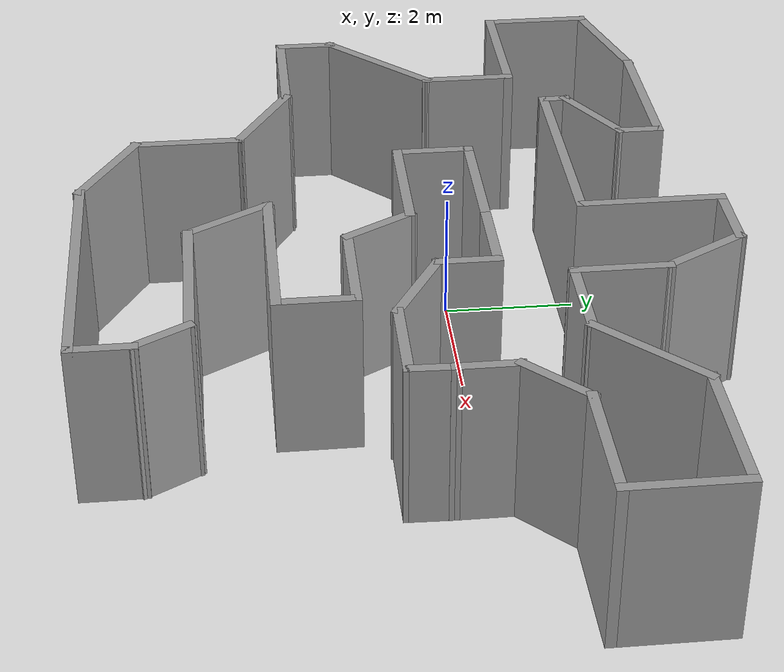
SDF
<?xml version='1.0'?>
<sdf version='1.7'>
  <model name='my_own_map_v2'>
    <pose>1.1907 -0.788514 0 0 -0 0</pose>
    <link name='Wall_10'>
      <collision name='Wall_10_Collision'>
        <geometry>
          <box>
            <size>1.75 0.15 2.5</size>
          </box>
        </geometry>
        <pose>0 0 1.25 0 -0 0</pose>
      </collision>
      <visual name='Wall_10_Visual'>
        <pose>0 0 1.25 0 -0 0</pose>
        <geometry>
          <box>
            <size>1.75 0.15 2.5</size>
          </box>
        </geometry>
        <material>
          <script>
            <uri>file://media/materials/scripts/gazebo.material</uri>
            <name>Gazebo/Grey</name>
          </script>
          <ambient>1 1 1 1</ambient>
        </material>
        <meta>
          <layer>0</layer>
        </meta>
      </visual>
      <pose>1.2693 -0.864114 0 0 -0 0</pose>
    </link>
    <link name='Wall_12'>
      <collision name='Wall_12_Collision'>
        <geometry>
          <box>
            <size>1.25 0.15 2.5</size>
          </box>
        </geometry>
        <pose>0 0 1.25 0 -0 0</pose>
      </collision>
      <visual name='Wall_12_Visual'>
        <pose>0 0 1.25 0 -0 0</pose>
        <geometry>
          <box>
            <size>1.25 0.15 2.5</size>
          </box>
        </geometry>
        <material>
          <script>
            <uri>file://media/materials/scripts/gazebo.material</uri>
            <name>Gazebo/Grey</name>
          </script>
          <ambient>1 1 1 1</ambient>
        </material>
        <meta>
          <layer>0</layer>
        </meta>
      </visual>
      <pose>2.0693 -1.41411 0 0 -0 -1.5708</pose>
    </link>
    <link name='Wall_13'>
      <collision name='Wall_13_Collision'>
        <geometry>
          <box>
            <size>2.75 0.15 2.5</size>
          </box>
        </geometry>
        <pose>0 0 1.25 0 -0 0</pose>
      </collision>
      <visual name='Wall_13_Visual'>
        <pose>0 0 1.25 0 -0 0</pose>
        <geometry>
          <box>
            <size>2.75 0.15 2.5</size>
          </box>
        </geometry>
        <material>
          <script>
            <uri>file://media/materials/scripts/gazebo.material</uri>
            <name>Gazebo/Grey</name>
          </script>
          <ambient>1 1 1 1</ambient>
        </material>
        <meta>
          <layer>0</layer>
        </meta>
      </visual>
      <pose>0.769297 -1.96411 0 0 -0 3.14159</pose>
    </link>
    <link name='Wall_14'>
      <collision name='Wall_14_Collision'>
        <geometry>
          <box>
            <size>1.5 0.15 2.5</size>
          </box>
        </geometry>
        <pose>0 0 1.25 0 -0 0</pose>
      </collision>
      <visual name='Wall_14_Visual'>
        <pose>0 0 1.25 0 -0 0</pose>
        <geometry>
          <box>
            <size>1.5 0.15 2.5</size>
          </box>
        </geometry>
        <material>
          <script>
            <uri>file://media/materials/scripts/gazebo.material</uri>
            <name>Gazebo/Grey</name>
          </script>
          <ambient>1 1 1 1</ambient>
        </material>
        <meta>
          <layer>0</layer>
        </meta>
      </visual>
      <pose>-0.193203 -2.54868 0 0 -0 -1.0472</pose>
    </link>
    <link name='Wall_15'>
      <collision name='Wall_15_Collision'>
        <geometry>
          <box>
            <size>2.5 0.15 2.5</size>
          </box>
        </geometry>
        <pose>0 0 1.25 0 -0 0</pose>
      </collision>
      <visual name='Wall_15_Visual'>
        <pose>0 0 1.25 0 -0 0</pose>
        <geometry>
          <box>
            <size>2.5 0.15 2.5</size>
          </box>
        </geometry>
        <material>
          <script>
            <uri>file://media/materials/scripts/gazebo.material</uri>
            <name>Gazebo/Grey</name>
          </script>
          <ambient>1 1 1 1</ambient>
        </material>
        <meta>
          <layer>0</layer>
        </meta>
      </visual>
      <pose>1.3193 -3.13325 0 0 -0 0</pose>
    </link>
    <link name='Wall_17'>
      <collision name='Wall_17_Collision'>
        <geometry>
          <box>
            <size>1 0.15 2.5</size>
          </box>
        </geometry>
        <pose>0 0 1.25 0 -0 0</pose>
      </collision>
      <visual name='Wall_17_Visual'>
        <pose>0 0 1.25 0 -0 0</pose>
        <geometry>
          <box>
            <size>1 0.15 2.5</size>
          </box>
        </geometry>
        <material>
          <script>
            <uri>file://media/materials/scripts/gazebo.material</uri>
            <name>Gazebo/Grey</name>
          </script>
          <ambient>1 1 1 1</ambient>
        </material>
        <meta>
          <layer>0</layer>
        </meta>
      </visual>
      <pose>2.7068 -3.50131 0 0 -0 -1.0472</pose>
    </link>
    <link name='Wall_18'>
      <collision name='Wall_18_Collision'>
        <geometry>
          <box>
            <size>1 0.15 2.5</size>
          </box>
        </geometry>
        <pose>0 0 1.25 0 -0 0</pose>
      </collision>
      <visual name='Wall_18_Visual'>
        <pose>0 0 1.25 0 -0 0</pose>
        <geometry>
          <box>
            <size>1 0.15 2.5</size>
          </box>
        </geometry>
        <material>
          <script>
            <uri>file://media/materials/scripts/gazebo.material</uri>
            <name>Gazebo/Grey</name>
          </script>
          <ambient>1 1 1 1</ambient>
        </material>
        <meta>
          <layer>0</layer>
        </meta>
      </visual>
      <pose>2.9193 -4.29437 0 0 -0 -1.5708</pose>
    </link>
    <link name='Wall_19'>
      <collision name='Wall_19_Collision'>
        <geometry>
          <box>
            <size>4.25 0.15 2.5</size>
          </box>
        </geometry>
        <pose>0 0 1.25 0 -0 0</pose>
      </collision>
      <visual name='Wall_19_Visual'>
        <pose>0 0 1.25 0 -0 0</pose>
        <geometry>
          <box>
            <size>4.25 0.15 2.5</size>
          </box>
        </geometry>
        <material>
          <script>
            <uri>file://media/materials/scripts/gazebo.material</uri>
            <name>Gazebo/Grey</name>
          </script>
          <ambient>1 1 1 1</ambient>
        </material>
        <meta>
          <layer>0</layer>
        </meta>
      </visual>
      <pose>0.869297 -4.71937 0 0 -0 3.14159</pose>
    </link>
    <link name='Wall_20'>
      <collision name='Wall_20_Collision'>
        <geometry>
          <box>
            <size>1.75 0.15 2.5</size>
          </box>
        </geometry>
        <pose>0 0 1.25 0 -0 0</pose>
      </collision>
      <visual name='Wall_20_Visual'>
        <pose>0 0 1.25 0 -0 0</pose>
        <geometry>
          <box>
            <size>1.75 0.15 2.5</size>
          </box>
        </geometry>
        <material>
          <script>
            <uri>file://media/materials/scripts/gazebo.material</uri>
            <name>Gazebo/Grey</name>
          </script>
          <ambient>1 1 1 1</ambient>
        </material>
        <meta>
          <layer>0</layer>
        </meta>
      </visual>
      <pose>-1.87352 -4.31937 0 0 -0 2.61799</pose>
    </link>
    <link name='Wall_21'>
      <collision name='Wall_21_Collision'>
        <geometry>
          <box>
            <size>1.75 0.15 2.5</size>
          </box>
        </geometry>
        <pose>0 0 1.25 0 -0 0</pose>
      </collision>
      <visual name='Wall_21_Visual'>
        <pose>0 0 1.25 0 -0 0</pose>
        <geometry>
          <box>
            <size>1.75 0.15 2.5</size>
          </box>
        </geometry>
        <material>
          <script>
            <uri>file://media/materials/scripts/gazebo.material</uri>
            <name>Gazebo/Grey</name>
          </script>
          <ambient>1 1 1 1</ambient>
        </material>
        <meta>
          <layer>0</layer>
        </meta>
      </visual>
      <pose>-2.56634 -3.11937 0 0 -0 1.5708</pose>
    </link>
    <link name='Wall_22'>
      <collision name='Wall_22_Collision'>
        <geometry>
          <box>
            <size>1.75 0.15 2.5</size>
          </box>
        </geometry>
        <pose>0 0 1.25 0 -0 0</pose>
      </collision>
      <visual name='Wall_22_Visual'>
        <pose>0 0 1.25 0 -0 0</pose>
        <geometry>
          <box>
            <size>1.75 0.15 2.5</size>
          </box>
        </geometry>
        <material>
          <script>
            <uri>file://media/materials/scripts/gazebo.material</uri>
            <name>Gazebo/Grey</name>
          </script>
          <ambient>1 1 1 1</ambient>
        </material>
        <meta>
          <layer>0</layer>
        </meta>
      </visual>
      <pose>-3.25916 -1.91937 0 0 -0 2.61799</pose>
    </link>
    <link name='Wall_23'>
      <collision name='Wall_23_Collision'>
        <geometry>
          <box>
            <size>2 0.15 2.5</size>
          </box>
        </geometry>
        <pose>0 0 1.25 0 -0 0</pose>
      </collision>
      <visual name='Wall_23_Visual'>
        <pose>0 0 1.25 0 -0 0</pose>
        <geometry>
          <box>
            <size>2 0.15 2.5</size>
          </box>
        </geometry>
        <material>
          <script>
            <uri>file://media/materials/scripts/gazebo.material</uri>
            <name>Gazebo/Grey</name>
          </script>
          <ambient>1 1 1 1</ambient>
        </material>
        <meta>
          <layer>0</layer>
        </meta>
      </visual>
      <pose>-4.87698 -1.51937 0 0 -0 3.14159</pose>
    </link>
    <link name='Wall_24'>
      <collision name='Wall_24_Collision'>
        <geometry>
          <box>
            <size>1 0.15 2.5</size>
          </box>
        </geometry>
        <pose>0 0 1.25 0 -0 0</pose>
      </collision>
      <visual name='Wall_24_Visual'>
        <pose>0 0 1.25 0 -0 0</pose>
        <geometry>
          <box>
            <size>1 0.15 2.5</size>
          </box>
        </geometry>
        <material>
          <script>
            <uri>file://media/materials/scripts/gazebo.material</uri>
            <name>Gazebo/Grey</name>
          </script>
          <ambient>1 1 1 1</ambient>
        </material>
        <meta>
          <layer>0</layer>
        </meta>
      </visual>
      <pose>-5.80199 -1.09437 0 0 -0 1.5708</pose>
    </link>
    <link name='Wall_26'>
      <collision name='Wall_26_Collision'>
        <geometry>
          <box>
            <size>2.25 0.15 2.5</size>
          </box>
        </geometry>
        <pose>0 0 1.25 0 -0 0</pose>
      </collision>
      <visual name='Wall_26_Visual'>
        <pose>0 0 1.25 0 -0 0</pose>
        <geometry>
          <box>
            <size>2.25 0.15 2.5</size>
          </box>
        </geometry>
        <material>
          <script>
            <uri>file://media/materials/scripts/gazebo.material</uri>
            <name>Gazebo/Grey</name>
          </script>
          <ambient>1 1 1 1</ambient>
        </material>
        <meta>
          <layer>0</layer>
        </meta>
      </visual>
      <pose>-5.05952 0.073092 0 0 -0 0.785398</pose>
    </link>
    <link name='Wall_27'>
      <collision name='Wall_27_Collision'>
        <geometry>
          <box>
            <size>1.5 0.15 2.5</size>
          </box>
        </geometry>
        <pose>0 0 1.25 0 -0 0</pose>
      </collision>
      <visual name='Wall_27_Visual'>
        <pose>0 0 1.25 0 -0 0</pose>
        <geometry>
          <box>
            <size>1.5 0.15 2.5</size>
          </box>
        </geometry>
        <material>
          <script>
            <uri>file://media/materials/scripts/gazebo.material</uri>
            <name>Gazebo/Grey</name>
          </script>
          <ambient>1 1 1 1</ambient>
        </material>
        <meta>
          <layer>0</layer>
        </meta>
      </visual>
      <pose>-4.31706 1.49056 0 0 -0 1.5708</pose>
    </link>
    <link name='Wall_28'>
      <collision name='Wall_28_Collision'>
        <geometry>
          <box>
            <size>2.25 0.15 2.5</size>
          </box>
        </geometry>
        <pose>0 0 1.25 0 -0 0</pose>
      </collision>
      <visual name='Wall_28_Visual'>
        <pose>0 0 1.25 0 -0 0</pose>
        <geometry>
          <box>
            <size>2.25 0.15 2.5</size>
          </box>
        </geometry>
        <material>
          <script>
            <uri>file://media/materials/scripts/gazebo.material</uri>
            <name>Gazebo/Grey</name>
          </script>
          <ambient>1 1 1 1</ambient>
        </material>
        <meta>
          <layer>0</layer>
        </meta>
      </visual>
      <pose>-5.36706 2.16555 0 0 -0 3.14159</pose>
    </link>
    <link name='Wall_30'>
      <collision name='Wall_30_Collision'>
        <geometry>
          <box>
            <size>1.75 0.15 2.5</size>
          </box>
        </geometry>
        <pose>0 0 1.25 0 -0 0</pose>
      </collision>
      <visual name='Wall_30_Visual'>
        <pose>0 0 1.25 0 -0 0</pose>
        <geometry>
          <box>
            <size>1.75 0.15 2.5</size>
          </box>
        </geometry>
        <material>
          <script>
            <uri>file://media/materials/scripts/gazebo.material</uri>
            <name>Gazebo/Grey</name>
          </script>
          <ambient>1 1 1 1</ambient>
        </material>
        <meta>
          <layer>0</layer>
        </meta>
      </visual>
      <pose>-6.41706 2.96555 0 0 -0 1.5708</pose>
    </link>
    <link name='Wall_31'>
      <collision name='Wall_31_Collision'>
        <geometry>
          <box>
            <size>2 0.15 2.5</size>
          </box>
        </geometry>
        <pose>0 0 1.25 0 -0 0</pose>
      </collision>
      <visual name='Wall_31_Visual'>
        <pose>0 0 1.25 0 -0 0</pose>
        <geometry>
          <box>
            <size>2 0.15 2.5</size>
          </box>
        </geometry>
        <material>
          <script>
            <uri>file://media/materials/scripts/gazebo.material</uri>
            <name>Gazebo/Grey</name>
          </script>
          <ambient>1 1 1 1</ambient>
        </material>
        <meta>
          <layer>0</layer>
        </meta>
      </visual>
      <pose>-5.52358 4.00496 0 0 -0 0.261799</pose>
    </link>
    <link name='Wall_32'>
      <collision name='Wall_32_Collision'>
        <geometry>
          <box>
            <size>2.5 0.15 2.5</size>
          </box>
        </geometry>
        <pose>0 0 1.25 0 -0 0</pose>
      </collision>
      <visual name='Wall_32_Visual'>
        <pose>0 0 1.25 0 -0 0</pose>
        <geometry>
          <box>
            <size>2.5 0.15 2.5</size>
          </box>
        </geometry>
        <material>
          <script>
            <uri>file://media/materials/scripts/gazebo.material</uri>
            <name>Gazebo/Grey</name>
          </script>
          <ambient>1 1 1 1</ambient>
        </material>
        <meta>
          <layer>0</layer>
        </meta>
      </visual>
      <pose>-3.4551 4.24437 0 0 -0 0</pose>
    </link>
    <link name='Wall_38'>
      <collision name='Wall_38_Collision'>
        <geometry>
          <box>
            <size>0.75 0.15 2.5</size>
          </box>
        </geometry>
        <pose>0 0 1.25 0 -0 0</pose>
      </collision>
      <visual name='Wall_38_Visual'>
        <pose>0 0 1.25 0 -0 0</pose>
        <geometry>
          <box>
            <size>0.75 0.15 2.5</size>
          </box>
        </geometry>
        <material>
          <script>
            <uri>file://media/materials/scripts/gazebo.material</uri>
            <name>Gazebo/Grey</name>
          </script>
          <ambient>1 1 1 1</ambient>
        </material>
        <meta>
          <layer>0</layer>
        </meta>
      </visual>
      <pose>-2.2801 3.94437 0 0 -0 -1.5708</pose>
    </link>
    <link name='Wall_39'>
      <collision name='Wall_39_Collision'>
        <geometry>
          <box>
            <size>1.5 0.15 2.5</size>
          </box>
        </geometry>
        <pose>0 0 1.25 0 -0 0</pose>
      </collision>
      <visual name='Wall_39_Visual'>
        <pose>0 0 1.25 0 -0 0</pose>
        <geometry>
          <box>
            <size>1.5 0.15 2.5</size>
          </box>
        </geometry>
        <material>
          <script>
            <uri>file://media/materials/scripts/gazebo.material</uri>
            <name>Gazebo/Grey</name>
          </script>
          <ambient>1 1 1 1</ambient>
        </material>
        <meta>
          <layer>0</layer>
        </meta>
      </visual>
      <pose>-2.86467 3.30687 0 0 -0 -2.61799</pose>
    </link>
    <link name='Wall_4'>
      <collision name='Wall_4_Collision'>
        <geometry>
          <box>
            <size>2 0.15 2.5</size>
          </box>
        </geometry>
        <pose>0 0 1.25 0 -0 0</pose>
      </collision>
      <visual name='Wall_4_Visual'>
        <pose>0 0 1.25 0 -0 0</pose>
        <geometry>
          <box>
            <size>2 0.15 2.5</size>
          </box>
        </geometry>
        <material>
          <script>
            <uri>file://media/materials/scripts/gazebo.material</uri>
            <name>Gazebo/Grey</name>
          </script>
          <ambient>1 1 1 1</ambient>
        </material>
        <meta>
          <layer>0</layer>
        </meta>
      </visual>
      <pose>-1.0057 0.088514 0 0 -0 0</pose>
    </link>
    <link name='Wall_40'>
      <collision name='Wall_40_Collision'>
        <geometry>
          <box>
            <size>0.5 0.15 2.5</size>
          </box>
        </geometry>
        <pose>0 0 1.25 0 -0 0</pose>
      </collision>
      <visual name='Wall_40_Visual'>
        <pose>0 0 1.25 0 -0 0</pose>
        <geometry>
          <box>
            <size>0.5 0.15 2.5</size>
          </box>
        </geometry>
        <material>
          <script>
            <uri>file://media/materials/scripts/gazebo.material</uri>
            <name>Gazebo/Grey</name>
          </script>
          <ambient>1 1 1 1</ambient>
        </material>
        <meta>
          <layer>0</layer>
        </meta>
      </visual>
      <pose>-3.44923 2.79437 0 0 -0 -1.5708</pose>
    </link>
    <link name='Wall_41'>
      <collision name='Wall_41_Collision'>
        <geometry>
          <box>
            <size>3.5 0.15 2.5</size>
          </box>
        </geometry>
        <pose>0 0 1.25 0 -0 0</pose>
      </collision>
      <visual name='Wall_41_Visual'>
        <pose>0 0 1.25 0 -0 0</pose>
        <geometry>
          <box>
            <size>3.5 0.15 2.5</size>
          </box>
        </geometry>
        <material>
          <script>
            <uri>file://media/materials/scripts/gazebo.material</uri>
            <name>Gazebo/Grey</name>
          </script>
          <ambient>1 1 1 1</ambient>
        </material>
        <meta>
          <layer>0</layer>
        </meta>
      </visual>
      <pose>-1.77423 2.61937 0 0 -0 0</pose>
    </link>
    <link name='Wall_42'>
      <collision name='Wall_42_Collision'>
        <geometry>
          <box>
            <size>2.25 0.15 2.5</size>
          </box>
        </geometry>
        <pose>0 0 1.25 0 -0 0</pose>
      </collision>
      <visual name='Wall_42_Visual'>
        <pose>0 0 1.25 0 -0 0</pose>
        <geometry>
          <box>
            <size>2.25 0.15 2.5</size>
          </box>
        </geometry>
        <material>
          <script>
            <uri>file://media/materials/scripts/gazebo.material</uri>
            <name>Gazebo/Grey</name>
          </script>
          <ambient>1 1 1 1</ambient>
        </material>
        <meta>
          <layer>0</layer>
        </meta>
      </visual>
      <pose>-0.099232 3.66937 0 0 -0 1.5708</pose>
    </link>
    <link name='Wall_43'>
      <collision name='Wall_43_Collision'>
        <geometry>
          <box>
            <size>1.25 0.15 2.5</size>
          </box>
        </geometry>
        <pose>0 0 1.25 0 -0 0</pose>
      </collision>
      <visual name='Wall_43_Visual'>
        <pose>0 0 1.25 0 -0 0</pose>
        <geometry>
          <box>
            <size>1.25 0.15 2.5</size>
          </box>
        </geometry>
        <material>
          <script>
            <uri>file://media/materials/scripts/gazebo.material</uri>
            <name>Gazebo/Grey</name>
          </script>
          <ambient>1 1 1 1</ambient>
        </material>
        <meta>
          <layer>0</layer>
        </meta>
      </visual>
      <pose>0.450768 4.71937 0 0 -0 0</pose>
    </link>
    <link name='Wall_44'>
      <collision name='Wall_44_Collision'>
        <geometry>
          <box>
            <size>1.5 0.15 2.5</size>
          </box>
        </geometry>
        <pose>0 0 1.25 0 -0 0</pose>
      </collision>
      <visual name='Wall_44_Visual'>
        <pose>0 0 1.25 0 -0 0</pose>
        <geometry>
          <box>
            <size>1.5 0.15 2.5</size>
          </box>
        </geometry>
        <material>
          <script>
            <uri>file://media/materials/scripts/gazebo.material</uri>
            <name>Gazebo/Grey</name>
          </script>
          <ambient>1 1 1 1</ambient>
        </material>
        <meta>
          <layer>0</layer>
        </meta>
      </visual>
      <pose>1.33827 4.1348 0 0 -0 -1.0472</pose>
    </link>
    <link name='Wall_45'>
      <collision name='Wall_45_Collision'>
        <geometry>
          <box>
            <size>1.5 0.15 2.5</size>
          </box>
        </geometry>
        <pose>0 0 1.25 0 -0 0</pose>
      </collision>
      <visual name='Wall_45_Visual'>
        <pose>0 0 1.25 0 -0 0</pose>
        <geometry>
          <box>
            <size>1.5 0.15 2.5</size>
          </box>
        </geometry>
        <material>
          <script>
            <uri>file://media/materials/scripts/gazebo.material</uri>
            <name>Gazebo/Grey</name>
          </script>
          <ambient>1 1 1 1</ambient>
        </material>
        <meta>
          <layer>0</layer>
        </meta>
      </visual>
      <pose>1.67577 2.87524 0 0 -0 -1.5708</pose>
    </link>
    <link name='Wall_46'>
      <collision name='Wall_46_Collision'>
        <geometry>
          <box>
            <size>1.5 0.15 2.5</size>
          </box>
        </geometry>
        <pose>0 0 1.25 0 -0 0</pose>
      </collision>
      <visual name='Wall_46_Visual'>
        <pose>0 0 1.25 0 -0 0</pose>
        <geometry>
          <box>
            <size>1.5 0.15 2.5</size>
          </box>
        </geometry>
        <material>
          <script>
            <uri>file://media/materials/scripts/gazebo.material</uri>
            <name>Gazebo/Grey</name>
          </script>
          <ambient>1 1 1 1</ambient>
        </material>
        <meta>
          <layer>0</layer>
        </meta>
      </visual>
      <pose>2.35077 2.20024 0 0 -0 0</pose>
    </link>
    <link name='Wall_47'>
      <collision name='Wall_47_Collision'>
        <geometry>
          <box>
            <size>2 0.15 2.5</size>
          </box>
        </geometry>
        <pose>0 0 1.25 0 -0 0</pose>
      </collision>
      <visual name='Wall_47_Visual'>
        <pose>0 0 1.25 0 -0 0</pose>
        <geometry>
          <box>
            <size>2 0.15 2.5</size>
          </box>
        </geometry>
        <material>
          <script>
            <uri>file://media/materials/scripts/gazebo.material</uri>
            <name>Gazebo/Grey</name>
          </script>
          <ambient>1 1 1 1</ambient>
        </material>
        <meta>
          <layer>0</layer>
        </meta>
      </visual>
      <pose>3.67984 2.85431 0 0 -0 0.785398</pose>
    </link>
    <link name='Wall_48'>
      <collision name='Wall_48_Collision'>
        <geometry>
          <box>
            <size>2.25 0.15 2.5</size>
          </box>
        </geometry>
        <pose>0 0 1.25 0 -0 0</pose>
      </collision>
      <visual name='Wall_48_Visual'>
        <pose>0 0 1.25 0 -0 0</pose>
        <geometry>
          <box>
            <size>2.25 0.15 2.5</size>
          </box>
        </geometry>
        <material>
          <script>
            <uri>file://media/materials/scripts/gazebo.material</uri>
            <name>Gazebo/Grey</name>
          </script>
          <ambient>1 1 1 1</ambient>
        </material>
        <meta>
          <layer>0</layer>
        </meta>
      </visual>
      <pose>5.38392 3.50838 0 0 -0 0</pose>
    </link>
    <link name='Wall_49'>
      <collision name='Wall_49_Collision'>
        <geometry>
          <box>
            <size>1.75 0.15 2.5</size>
          </box>
        </geometry>
        <pose>0 0 1.25 0 -0 0</pose>
      </collision>
      <visual name='Wall_49_Visual'>
        <pose>0 0 1.25 0 -0 0</pose>
        <geometry>
          <box>
            <size>1.75 0.15 2.5</size>
          </box>
        </geometry>
        <material>
          <script>
            <uri>file://media/materials/scripts/gazebo.material</uri>
            <name>Gazebo/Grey</name>
          </script>
          <ambient>1 1 1 1</ambient>
        </material>
        <meta>
          <layer>0</layer>
        </meta>
      </visual>
      <pose>6.43392 2.70838 0 0 -0 -1.5708</pose>
    </link>
    <link name='Wall_50'>
      <collision name='Wall_50_Collision'>
        <geometry>
          <box>
            <size>2 0.15 2.5</size>
          </box>
        </geometry>
        <pose>0 0 1.25 0 -0 0</pose>
      </collision>
      <visual name='Wall_50_Visual'>
        <pose>0 0 1.25 0 -0 0</pose>
        <geometry>
          <box>
            <size>2 0.15 2.5</size>
          </box>
        </geometry>
        <material>
          <script>
            <uri>file://media/materials/scripts/gazebo.material</uri>
            <name>Gazebo/Grey</name>
          </script>
          <ambient>1 1 1 1</ambient>
        </material>
        <meta>
          <layer>0</layer>
        </meta>
      </visual>
      <pose>5.50892 1.90838 0 0 -0 3.14159</pose>
    </link>
    <link name='Wall_51'>
      <collision name='Wall_51_Collision'>
        <geometry>
          <box>
            <size>1.25 0.15 2.5</size>
          </box>
        </geometry>
        <pose>0 0 1.25 0 -0 0</pose>
      </collision>
      <visual name='Wall_51_Visual'>
        <pose>0 0 1.25 0 -0 0</pose>
        <geometry>
          <box>
            <size>1.25 0.15 2.5</size>
          </box>
        </geometry>
        <material>
          <script>
            <uri>file://media/materials/scripts/gazebo.material</uri>
            <name>Gazebo/Grey</name>
          </script>
          <ambient>1 1 1 1</ambient>
        </material>
        <meta>
          <layer>0</layer>
        </meta>
      </visual>
      <pose>4.19501 1.51947 0 0 -0 -2.35619</pose>
    </link>
    <link name='Wall_53'>
      <collision name='Wall_53_Collision'>
        <geometry>
          <box>
            <size>1 0.15 2.5</size>
          </box>
        </geometry>
        <pose>0 0 1.25 0 -0 0</pose>
      </collision>
      <visual name='Wall_53_Visual'>
        <pose>0 0 1.25 0 -0 0</pose>
        <geometry>
          <box>
            <size>1 0.15 2.5</size>
          </box>
        </geometry>
        <material>
          <script>
            <uri>file://media/materials/scripts/gazebo.material</uri>
            <name>Gazebo/Grey</name>
          </script>
          <ambient>1 1 1 1</ambient>
        </material>
        <meta>
          <layer>0</layer>
        </meta>
      </visual>
      <pose>3.8061 0.705566 0 0 -0 -1.5708</pose>
    </link>
    <link name='Wall_57'>
      <collision name='Wall_57_Collision'>
        <geometry>
          <box>
            <size>1.5 0.15 2.5</size>
          </box>
        </geometry>
        <pose>0 0 1.25 0 -0 0</pose>
      </collision>
      <visual name='Wall_57_Visual'>
        <pose>0 0 1.25 0 -0 0</pose>
        <geometry>
          <box>
            <size>1.5 0.15 2.5</size>
          </box>
        </geometry>
        <material>
          <script>
            <uri>file://media/materials/scripts/gazebo.material</uri>
            <name>Gazebo/Grey</name>
          </script>
          <ambient>1 1 1 1</ambient>
        </material>
        <meta>
          <layer>0</layer>
        </meta>
      </visual>
      <pose>0.594297 1.18851 0 0 -0 0</pose>
    </link>
    <link name='Wall_58'>
      <collision name='Wall_58_Collision'>
        <geometry>
          <box>
            <size>1 0.15 2.5</size>
          </box>
        </geometry>
        <pose>0 0 1.25 0 -0 0</pose>
      </collision>
      <visual name='Wall_58_Visual'>
        <pose>0 0 1.25 0 -0 0</pose>
        <geometry>
          <box>
            <size>1 0.15 2.5</size>
          </box>
        </geometry>
        <material>
          <script>
            <uri>file://media/materials/scripts/gazebo.material</uri>
            <name>Gazebo/Grey</name>
          </script>
          <ambient>1 1 1 1</ambient>
        </material>
        <meta>
          <layer>0</layer>
        </meta>
      </visual>
      <pose>1.2693 0.763514 0 0 -0 -1.5708</pose>
    </link>
    <link name='Wall_6'>
      <collision name='Wall_6_Collision'>
        <geometry>
          <box>
            <size>1.25 0.15 2.5</size>
          </box>
        </geometry>
        <pose>0 0 1.25 0 -0 0</pose>
      </collision>
      <visual name='Wall_6_Visual'>
        <pose>0 0 1.25 0 -0 0</pose>
        <geometry>
          <box>
            <size>1.25 0.15 2.5</size>
          </box>
        </geometry>
        <material>
          <script>
            <uri>file://media/materials/scripts/gazebo.material</uri>
            <name>Gazebo/Grey</name>
          </script>
          <ambient>1 1 1 1</ambient>
        </material>
        <meta>
          <layer>0</layer>
        </meta>
      </visual>
      <pose>-1.9307 0.638514 0 0 -0 1.5708</pose>
    </link>
    <link name='Wall_61'>
      <collision name='Wall_61_Collision'>
        <geometry>
          <box>
            <size>1.5 0.15 2.5</size>
          </box>
        </geometry>
        <pose>0 0 1.25 0 -0 0</pose>
      </collision>
      <visual name='Wall_61_Visual'>
        <pose>0 0 1.25 0 -0 0</pose>
        <geometry>
          <box>
            <size>1.5 0.15 2.5</size>
          </box>
        </geometry>
        <material>
          <script>
            <uri>file://media/materials/scripts/gazebo.material</uri>
            <name>Gazebo/Grey</name>
          </script>
          <ambient>1 1 1 1</ambient>
        </material>
        <meta>
          <layer>0</layer>
        </meta>
      </visual>
      <pose>1.85386 0.001014 0 0 -0 -0.523599</pose>
    </link>
    <link name='Wall_62'>
      <collision name='Wall_62_Collision'>
        <geometry>
          <box>
            <size>1.5 0.15 2.5</size>
          </box>
        </geometry>
        <pose>0 0 1.25 0 -0 0</pose>
      </collision>
      <visual name='Wall_62_Visual'>
        <pose>0 0 1.25 0 -0 0</pose>
        <geometry>
          <box>
            <size>1.5 0.15 2.5</size>
          </box>
        </geometry>
        <material>
          <script>
            <uri>file://media/materials/scripts/gazebo.material</uri>
            <name>Gazebo/Grey</name>
          </script>
          <ambient>1 1 1 1</ambient>
        </material>
        <meta>
          <layer>0</layer>
        </meta>
      </visual>
      <pose>3.11343 -0.336486 0 0 -0 0</pose>
    </link>
    <link name='Wall_63'>
      <collision name='Wall_63_Collision'>
        <geometry>
          <box>
            <size>0.767304 0.15 2.5</size>
          </box>
        </geometry>
        <pose>0 0 1.25 0 -0 0</pose>
      </collision>
      <visual name='Wall_63_Visual'>
        <pose>0 0 1.25 0 -0 0</pose>
        <geometry>
          <box>
            <size>0.767304 0.15 2.5</size>
          </box>
        </geometry>
        <material>
          <script>
            <uri>file://media/materials/scripts/gazebo.material</uri>
            <name>Gazebo/Grey</name>
          </script>
          <ambient>1 1 1 1</ambient>
        </material>
        <meta>
          <layer>0</layer>
        </meta>
      </visual>
      <pose>3.79726 -0.02796 0 0 -0 1.54217</pose>
    </link>
    <link name='Wall_7'>
      <collision name='Wall_7_Collision'>
        <geometry>
          <box>
            <size>2 0.15 2.5</size>
          </box>
        </geometry>
        <pose>0 0 1.25 0 -0 0</pose>
      </collision>
      <visual name='Wall_7_Visual'>
        <pose>0 0 1.25 0 -0 0</pose>
        <geometry>
          <box>
            <size>2 0.15 2.5</size>
          </box>
        </geometry>
        <material>
          <script>
            <uri>file://media/materials/scripts/gazebo.material</uri>
            <name>Gazebo/Grey</name>
          </script>
          <ambient>1 1 1 1</ambient>
        </material>
        <meta>
          <layer>0</layer>
        </meta>
      </visual>
      <pose>-1.0057 1.18851 0 0 -0 0</pose>
    </link>
    <link name='Wall_9'>
      <collision name='Wall_9_Collision'>
        <geometry>
          <box>
            <size>1.25 0.15 2.5</size>
          </box>
        </geometry>
        <pose>0 0 1.25 0 -0 0</pose>
      </collision>
      <visual name='Wall_9_Visual'>
        <pose>0 0 1.25 0 -0 0</pose>
        <geometry>
          <box>
            <size>1.25 0.15 2.5</size>
          </box>
        </geometry>
        <material>
          <script>
            <uri>file://media/materials/scripts/gazebo.material</uri>
            <name>Gazebo/Grey</name>
          </script>
          <ambient>1 1 1 1</ambient>
        </material>
        <meta>
          <layer>0</layer>
        </meta>
      </visual>
      <pose>0.194297 -0.3878 0 0 -0 -1.0472</pose>
    </link>
    <static>1</static>
  </model>
</sdf>
